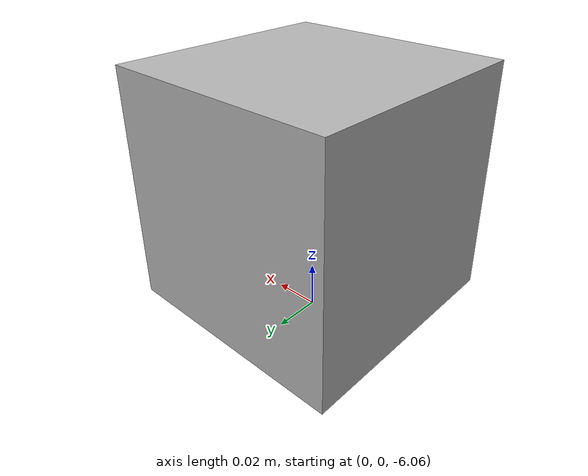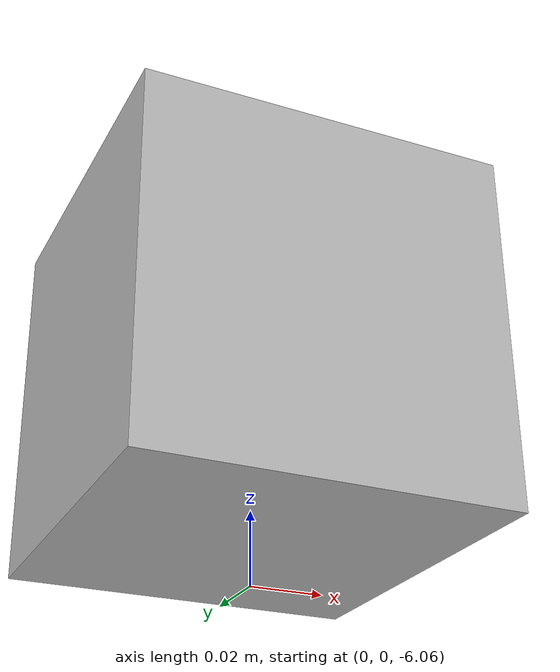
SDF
<?xml version="1.0"?>
<sdf version="1.6">
  <model name="custom_camera">

    <static>true</static>
    <pose>0 0 -6 0 0 0</pose>

    <link name="link">

      <visual name="visual">
        <cast_shadows>false</cast_shadows>
        <geometry>
          <box>
            <size>0.1 0.1 0.1</size>
          </box>
        </geometry>
        <material>
          <script>Gazebo/Orange</script>
        </material>
      </visual>

      <sensor type="camera" name="camera1">
        <update_rate>30.0</update_rate>
        <camera name="head">
          <horizontal_fov>1.8962634</horizontal_fov>
          <image>
            <width>1920</width>
            <height>1080</height>
            <format>R8G8B8</format>
          </image>
          <clip>
            <near>0.02</near>
            <far>300</far>
          </clip>
        </camera>
        <!-- gazebo-utils camera plugin -->
        <plugin name='camera_utils' filename='libCameraUtils.so'>
          <!-- Output directory -->
          <!-- TODO - Change! -->
          <output_dir>train/SHAPES2018/images/</output_dir>
          <!-- Output image extension -->
          <extension>.png</extension>
        </plugin>
      </sensor>

    </link>
  </model>
</sdf>
